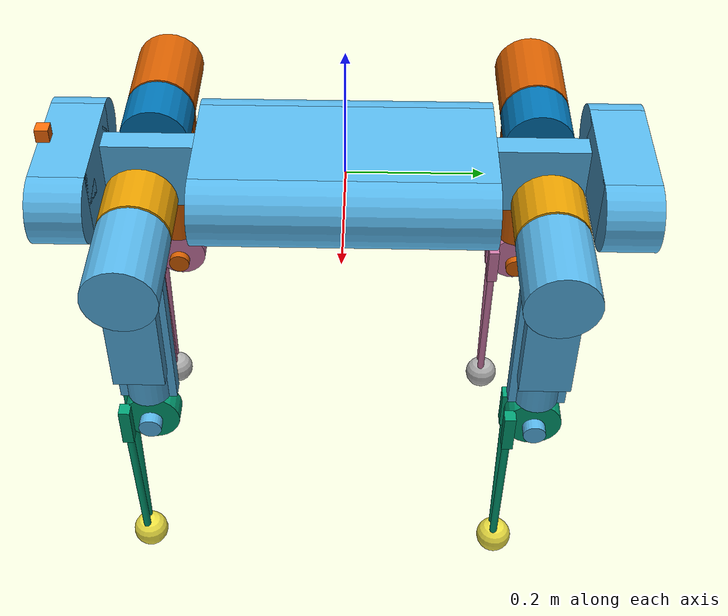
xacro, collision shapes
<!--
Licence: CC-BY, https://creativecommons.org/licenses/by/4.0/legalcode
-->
<?xml version="1.0"?>
<robot name="dogbot" xmlns:xacro="http://ros.org/wiki/xacro">

  <xacro:property name="collisionmesh" value="false" />

  <xacro:property name="bodyheight" value="0.105" />
  <xacro:property name="bodywidth" value="0.282" />
  <xacro:property name="bodylen" value="0.865" />

  <xacro:property name="hipoffsetside" value="0.088" /><!-- offset from body centreline to hip roll -->
  <xacro:property name="hipoffset" value="0.2875" /><!-- offset from body midpoint front/back to hip, axis-to-axis is 575mm -->
  <xacro:property name="legoffsetside" value="0.18675" /><!-- from centreline to centre/origin of upper leg -->
  <xacro:property name="upperleglen" value="0.315" />
  <xacro:property name="lowerleglen" value="0.3" />

  <xacro:property name="kp" value="1000000" />
  <xacro:property name="kd" value="1.0" />
  <!-- degrees to radians -->
  <xacro:property name="d2rad" value="0.017453" />

  <xacro:property name="box_height" value="0.02" />
  <xacro:property name="box_width" value="0.02" />

  <material name="blue">
    <color rgba="0 0 0.8 1"/>
  </material>

  <material name="black">
    <color rgba="0 0 0 1"/>
  </material>

  <material name="white">
    <color rgba="1 1 1 1"/>
  </material>

  <material name="dogbotred">
    <color rgba="1 0 0 1"/>
  </material>

  <material name="dogbotgray">
    <color rgba="0.7 0.7 0.7 1"/>
  </material>

  <!-- Approximate mass distribution with a box
  set ifactor=1 for solid box, =2.0 for a thin shell -->
  <xacro:macro name="default_inertial" params="mass xSize ySize zSize x:=0 y:=0 z:=0 ifactor:=1.0">
    <inertial>
      <mass value="${mass}" />
      <origin xyz="${x} ${y} ${z}" rpy="0 0 0" />
      <inertia
        ixx="${(1.0 / 12.0) * mass * ifactor * (pow(ySize, 2) + pow(zSize, 2))}"
        ixy="0.0"
        ixz="0.0"
        iyy="${(1.0 / 12.0) * mass * ifactor * (pow(xSize, 2) + pow(zSize, 2))}"
        iyz="0.0"
        izz="${(1.0 / 12.0) * mass * ifactor * (pow(xSize, 2) + pow(ySize, 2))}"
      />
    </inertial>
  </xacro:macro>

  <!-- useful for visual-only links; need some inertia on all elements -->
  <xacro:macro name="tinymass" >
    <xacro:default_inertial mass="0.001" xSize="0.001" ySize="0.001" zSize="0.001" />
  </xacro:macro>

  <xacro:macro name="custom_inertial" params="mass x:=0 y:=0 z:=0 r:=0 p:=0 yaw:=0 ixx:=0.01 ixy:=0 ixz:=0 iyy:=0.01 iyz:=0 izz:=0.01">
    <inertial>
      <mass value="${mass}" />
      <origin xyz="${x} ${y} ${z}" rpy="${r} ${p} ${yaw}" />
      <inertia
        ixx="${ixx}" ixy="${ixy}" ixz="${ixz}"
        iyy="${iyy}" iyz="${iyz}" izz="${izz}"
      />
    </inertial>
  </xacro:macro>

  <xacro:macro name="offset_collisionbox" params="l w:=${bodywidth-bodyheight} h:=${bodyheight} x:=0 y:=0 z:=0">
    <collision>
      <origin xyz="${x} ${y} ${z}" rpy="0 0 0" />
      <geometry>
        <box size="${w} ${l} ${h}"/>
      </geometry>
    </collision>
  </xacro:macro>

  <xacro:macro name="offset_cylinder" params="l rad=${bodyheight/2} x:=0 y:=0 z:=0 r:=0 p:=0 yaw:=0" >
    <collision>
      <origin xyz="${x} ${y} ${z}" rpy="${r} ${p} ${yaw}" />
      <geometry>
        <cylinder radius="${rad}" length="${l}"/>
      </geometry>
    </collision>
  </xacro:macro>

  <xacro:macro name="offset_cylinderpair" params="l rad=${bodyheight/2} x:=${(bodywidth/2)-(bodyheight/2)} y:=0">
    <xacro:offset_cylinder l="${l}" rad="${rad}" x="${x}" y="${y}" r="${pi/2}" />
    <xacro:offset_cylinder l="${l}" rad="${rad}" x="${-x}" y="${y}" r="${pi/2}" />
  </xacro:macro>

  <!-- start the robot links -->
  <link name="base_link">
  </link>

  <link name="body">
    <visual>
      <origin xyz="0 0 0" rpy="${-0.5 * pi} 0 0" />
      <geometry>
        <mesh scale="1.0 1.0 1.0" filename="package://dogbot_description/meshes/body.dae"/>
      </geometry>
    </visual>

    <xacro:if value="${collisionmesh}">
    <collision>
      <geometry>
        <mesh scale="1.0 1.0 1.0" filename="package://dogbot_description/meshes/body.dae"/>
      </geometry>
    </collision>
    </xacro:if>
    <xacro:unless value="${collisionmesh}">
      <!-- central body -->
      <xacro:offset_collisionbox l="0.433" />
      <xacro:offset_cylinderpair l="0.433" />
      <!-- handles -->
      <xacro:offset_collisionbox l="0.132" w="0.035" y="0.2825"/>
      <xacro:offset_collisionbox l="0.132" w="0.035" y="-0.2825"/>
      <!-- ends -->
      <xacro:offset_collisionbox l="0.080" y="0.3975"/>
      <xacro:offset_cylinderpair l="0.080" y="0.3975" />
      <xacro:offset_collisionbox l="0.080" y="-0.3975"/>
      <xacro:offset_cylinderpair l="0.080" y="-0.3975" />
    </xacro:unless>

    <xacro:custom_inertial mass="9.3" ixx="0.41" iyy="0.091" izz="0.482"/>

  </link>

  <joint name="base_joint" type="fixed">
    <axis xyz="0 0 0" rpy="0 0 0" />
    <parent link="base_link"/>
    <child link="body"/>
  </joint>

   <!-- giunto che unisce body a sensor -->

  <joint name="body_sensor" type="fixed">
  <axis xyz="0 0 0" rpy="0 0 0" />
    <parent link="body"/>
    <child link="sensor"/>
    <origin rpy="0.0 0.0 -1.57" xyz="0.0 -0.43 0.053" />
  </joint>

   <link name="sensor">
    <collision>
      <origin xyz="0 0 ${box_height/2}" rpy="0 0 0"/>
      <geometry>
        <box size="${box_width} ${box_width} ${box_height}"/>
      </geometry>
    </collision>
    <visual>
      <origin xyz="0 0 ${box_height/2}" rpy="0 0 0"/>
      <geometry>
        <box size="${box_width} ${box_width} ${box_height}"/>
      </geometry>
      <material name="orange"/>
    </visual>
    <inertial>
      <origin xyz="0 0 1" rpy="0 0 0"/>
      <mass value="0.114"/>
      <inertia
        ixx="0.001" ixy="0.0" ixz="0.0"
        iyy="0.001" iyz="0.0"
        izz="0.001"/>
    </inertial>
  </link>
  <material name="orange">
    <color rgba="${255/255} ${108/255} ${10/255} 1.0"/>
  </material>
 <gazebo reference="sensor">
    <material>Gazebo/Blue</material>
  </gazebo>

  <!-- altro giunto -->

  <link name="bodytext">
    <visual>
      <origin xyz="0 0 0" rpy="${-0.5 * pi} 0 0" />
      <geometry>
        <mesh scale="1.0 1.0 1.0" filename="package://dogbot_description/meshes/bodyTEXT.dae"/>
      </geometry>
    </visual>
    <xacro:tinymass />
  </link>

  <joint name="bodytext_joint" type="fixed">
    <parent link="body"/>
    <child link="bodytext"/>
  </joint>

  <gazebo reference="body">
    <mu1 value="200.0"/>
    <mu2 value="100.0"/>
    <kp value="${kp}" />
    <kd value="${kd}" />

 <sensor name="base_link_contactsensor_sensor" type="contact">
        <always_on>true</always_on>
        <contact>
          <collision>base_link_fixed_joint_lump__body_collision_8</collision>
        </contact>
        <plugin name="body_plugin" filename="libgazebo_ros_bumper.so">
          <bumperTopicName>base_link_contactsensor_state</bumperTopicName>
          <frameName>world</frameName>
        </plugin>
      </sensor>

 <sensor name="base_link_contactsensor_sensor2" type="contact">
        <always_on>true</always_on>
        <contact>
          <collision>base_link_fixed_joint_lump__body_collision_9</collision>
        </contact>
        <plugin name="body_plugin2" filename="libgazebo_ros_bumper.so">
          <bumperTopicName>base_link_contactsensor_state2</bumperTopicName>
          <frameName>world</frameName>
        </plugin>
      </sensor>

 <sensor name="base_link_contactsensor_sensor3" type="contact">
        <always_on>true</always_on>
        <contact>
          <collision>base_link_fixed_joint_lump__body_collision_10</collision>
        </contact>
        <plugin name="body_plugin3" filename="libgazebo_ros_bumper.so">
          <bumperTopicName>base_link_contactsensor_state3</bumperTopicName>
          <frameName>world</frameName>
        </plugin>
      </sensor>
  </gazebo>

  <xacro:macro name="leg" params="prefix suffix reflectx reflecty">

    <link name="${prefix}_${suffix}_hip">
      <visual>
        <origin xyz="0 0 0" rpy="${-0.5 * pi} ${(reflectx-1) * 0.5 * pi} 0" />
        <geometry>
          <mesh scale="1.0 1.0 1.0" filename="package://dogbot_description/meshes/hip.dae"/>
        </geometry>
      </visual>

      <xacro:if value="${collisionmesh}">
      <collision>
        <origin xyz="0 0 0" rpy="${-0.5 * pi} ${(reflectx-1) * 0.5 * pi} 0" />
        <geometry>
          <mesh scale="1.0 1.0 1.0" filename="package://dogbot_description/meshes/hip.dae"/>
        </geometry>
      </collision>
      </xacro:if>
      <xacro:unless value="${collisionmesh}">
        <xacro:offset_cylinder l="0.08" p="${pi/2}" x="${0.02 * reflectx}"/>
      </xacro:unless>
      <xacro:custom_inertial mass="0.836" x="${0.0074 * reflectx}" ixx="0.00213" iyy="0.00147" izz="0.00172"/>

    </link>

    <!-- roll joint connects the hip to the body -->
    <joint name="${prefix}_${suffix}_roll_joint" type="revolute">
      <axis xyz="0 ${reflecty} 0" rpy="0 0 0" />
      <parent link="body"/>
      <child link="${prefix}_${suffix}_hip"/>
      <origin xyz="${hipoffsetside*reflectx} ${hipoffset * reflecty} 0" rpy="0 0 0"/>
      <limit
         lower ="${-100 * d2rad}"
         upper ="${100 * d2rad}"
         effort="60" velocity="6.0" />
    </joint>

    <link name="${prefix}_${suffix}_upperleg">
      <visual>
        <origin xyz="0 0 0" rpy="${-0.5 * pi} 0 ${ (reflectx -1) * 0.5 * pi}" />
        <geometry>
          <mesh scale="1.0 1.0 1.0" filename="package://dogbot_description/meshes/LegUpper_withCover.dae"/>
        </geometry>
      </visual>

      <xacro:if value="${collisionmesh}">
      <collision>
        <origin xyz="0 0 0" rpy="${-0.5 * pi} 0 ${ (reflectx -1) * 0.5 * pi}" />
        <geometry>
          <mesh scale="1.0 1.0 1.0" filename="package://dogbot_description/meshes/LegUpper_withCover.dae"/>
        </geometry>
      </collision>
      </xacro:if>
      <xacro:unless value="${collisionmesh}">
        <!-- upper motor housings -->
        <xacro:offset_cylinder l="0.13" p="${pi/2}" x="${0.03 * reflectx}"/>
        <!-- main leg cylinder and belt -->
        <xacro:offset_cylinder l="0.27" rad="0.033" z="-0.135"/>
        <xacro:offset_collisionbox l="0.084" w="0.025" h="0.27" z="-0.135"/>
        <!-- circuit board housing -->
        <xacro:offset_collisionbox l="0.074" w="0.026" h="0.138" x="${0.046 * reflectx}" z="-0.126"/>
        <!-- knee-joint components -->
        <xacro:offset_cylinder l="0.018" rad="0.017" z="${-upperleglen}" p="${pi/2}" x="${0.03 * reflectx}" />
        <xacro:offset_cylinder l="0.013" rad="0.017" z="${-upperleglen}" p="${pi/2}" x="${-0.036 * reflectx}" />
      </xacro:unless>

      <xacro:custom_inertial mass="1.851" x="${0.0418 * reflectx}" z="-0.0517" ixx="0.0238" iyy="0.0252" izz="0.0044"/>
    </link>

    <!-- pitch joint connects hip to upper leg -->
    <joint name="${prefix}_${suffix}_pitch_joint" type="revolute">
      <axis xyz="${reflectx} 0 0" rpy="0 0 0" />
      <parent link="${prefix}_${suffix}_hip"/>
      <child link="${prefix}_${suffix}_upperleg"/>
      <origin xyz="${(legoffsetside - hipoffsetside)*reflectx} 0 0" rpy="0 0 0"/>
      <limit
        lower ="${-0.5 * pi *(reflectx+1) + 0.25 * pi * (reflectx-1)}"
        upper="${0.25 * pi *(reflectx+1) - 0.5 * pi * (reflectx-1)}"
        effort="60"
        velocity="6.0"
      />
    </joint>

    <link name="${prefix}_${suffix}_lowerleg">
      <visual>
        <origin xyz="0 0 0" rpy="${-0.5 * pi} 0 0" />
        <geometry>
          <mesh scale="1.0 1.0 1.0" filename="package://dogbot_description/meshes/LegLower_nofoot.dae"/>
        </geometry>
      </visual>

      <xacro:if value="${collisionmesh}">
      <collision>
        <origin xyz="0 0 0" rpy="${-0.5 * pi} 0 0" />
        <geometry>
          <mesh scale="1.0 1.0 1.0" filename="package://dogbot_description/meshes/LegLower_nofoot.dae"/>
        </geometry>
      </collision>
      </xacro:if>
      <xacro:unless value="${collisionmesh}">
        <!-- knee assembly -->
        <xacro:offset_cylinder l="0.033" rad="0.042" p="${pi/2}" />
        <xacro:offset_collisionbox l="0.017" w="0.02" h="0.065" x="0.024" y="-0.0375" z="-0.0055" />
        <xacro:offset_collisionbox l="0.017" w="0.02" h="0.065" x="-0.024" y="-0.0375" z="-0.0055" />
        <!-- carbon fibre struts -->
        <xacro:offset_cylinder l="0.290" rad="0.006" p="0.04996" x="0.01575" y="-0.0375" z="-0.145" />
        <xacro:offset_cylinder l="0.290" rad="0.006" p="-0.04996" x="-0.01575" y="-0.0375" z="-0.145" />
      </xacro:unless>

      <xacro:custom_inertial mass="0.302" y="-0.029" z="-0.1439" ixx="0.00527" iyy="0.00509" izz="0.0008"/>
    </link>

    <gazebo reference="${prefix}_${suffix}_lowerleg">
      <mu1 value="2000.0"/>
      <mu2 value="1000.0"/>
      <kp value="${kp}" />
      <kd value="${kd}" />
      <selfCollide value="true" />
    </gazebo>

    <joint name="${prefix}_${suffix}_knee_joint" type="revolute">
      <axis xyz="${-1 * reflectx} 0 0" rpy="${-2*pi} 0 0" />
      <parent link="${prefix}_${suffix}_upperleg"/>
      <child link="${prefix}_${suffix}_lowerleg"/>
      <origin xyz="0 0 ${-upperleglen}" rpy="0 0 0"/>
      <limit
         lower ="${-0.01*(reflectx+1) + 150 * d2rad * (reflectx-1)/2}"
         upper ="${-0.01*(reflectx-1) + 150 * d2rad * (reflectx+1)/2}"
         effort="60" velocity="6.0"
       />
    </joint>

    <link name="${prefix}_${suffix}_foot">
      <visual>
        <origin xyz="0 0 0" rpy="${-0.5 * pi} 0 0" />
        <geometry>
          <mesh scale="1.0 1.0 1.0" filename="package://dogbot_description/meshes/foot.dae"/>
        </geometry>
      </visual>

      <xacro:if value="${collisionmesh}">
      <collision>
        <origin xyz="0 0 0" rpy="${-0.5 * pi} 0 0" />
        <geometry>
          <mesh scale="1.0 1.0 1.0" filename="package://dogbot_description/meshes/foot.dae"/>
        </geometry>
      </collision>
      </xacro:if>
      <xacro:unless value="${collisionmesh}">
        <collision>
          <origin xyz="0 -0.035 ${-lowerleglen}" rpy="0 0 0" />
          <geometry>
            <sphere radius="0.028" />
          </geometry>
        </collision>
      </xacro:unless>
      <!-- foot mass is included in lower leg link -->
      <xacro:tinymass />
    </link>

    <joint name="${prefix}_${suffix}_foot_joint" type="fixed">
      <axis xyz="0 1 0" rpy="0 0 0" />
      <parent link="${prefix}_${suffix}_lowerleg"/>
      <child link="${prefix}_${suffix}_foot"/>
      <origin xyz="0 0 0" rpy="0 0 0"/>
    </joint>

    <gazebo reference="${prefix}_${suffix}_foot">
      <mu1 value="2000.0"/>
      <mu2 value="1000.0"/>
      <kp value="${kp}" />
      <kd value="${kd}" />

 <!-- Contact Sensor -->
      <sensor name="${prefix}_${suffix}_contactsensor_sensor" type="contact">
        <always_on>true</always_on>
        <contact>
          <collision>${prefix}_${suffix}_lowerleg_fixed_joint_lump__${prefix}_${suffix}_foot_collision_5</collision>
        </contact>
        <plugin name="${prefix}_${suffix}_foot_plugin" filename="libgazebo_ros_bumper.so">
          <bumperTopicName>${prefix}_${suffix}_contactsensor_state</bumperTopicName>
          <frameName>world</frameName>
        </plugin>
      </sensor>

 <!-- Contact Sensor -->
      <sensor name="${prefix}_${suffix}_contactsensor2_sensor" type="contact">
        <always_on>true</always_on>
        <contact>
          <collision>${prefix}_${suffix}_lowerleg_fixed_joint_lump__${prefix}_${suffix}_foot_collision_5</collision>
        </contact>

        <plugin name="${prefix}_${suffix}_foot_plugin2" filename="libgazebo_ros_bumper.so">
          <bumperTopicName>${prefix}_${suffix}_contactsensor_state</bumperTopicName>
          <frameName>world</frameName>
        </plugin>
      </sensor>

 </gazebo>

    <transmission name="${prefix}_${suffix}_roll_transmition" >
      <type>transmission_interface/SimpleTransmission</type>
      <joint name="${prefix}_${suffix}_roll_joint">
        <hardwareInterface>hardware_interface/EffortJointInterface</hardwareInterface>
      </joint>
      <actuator name="${prefix}_${suffix}_roll_motor" >
        <hardwareInterface>hardware_interface/EffortJointInterface</hardwareInterface>
        <mechanicalReduction>1</mechanicalReduction>
      </actuator>
    </transmission>

    <transmission name="${prefix}_${suffix}_pitch_transmition" >
      <type>transmission_interface/SimpleTransmission</type>
      <joint name="${prefix}_${suffix}_pitch_joint">
        <hardwareInterface>hardware_interface/EffortJointInterface</hardwareInterface>
      </joint>
      <actuator name="${prefix}_${suffix}_pitch_motor" >
        <hardwareInterface>hardware_interface/EffortJointInterface</hardwareInterface>
        <mechanicalReduction>1</mechanicalReduction>
      </actuator>
    </transmission>

    <transmission name="${prefix}_${suffix}_knee_transmition" >
      <type>transmission_interface/SimpleTransmission</type>
      <joint name="${prefix}_${suffix}_knee_joint">
        <hardwareInterface>hardware_interface/EffortJointInterface</hardwareInterface>
      </joint>
      <actuator name="${prefix}_${suffix}_knee_motor" >
        <hardwareInterface>hardware_interface/EffortJointInterface</hardwareInterface>
        <mechanicalReduction>1</mechanicalReduction>
      </actuator>
    </transmission>

  </xacro:macro>

  <xacro:leg prefix="back" suffix="left" reflectx="-1"  reflecty="-1"/>
  <xacro:leg prefix="back" suffix="right"  reflectx="1" reflecty="-1" />
  <xacro:leg prefix="front"  suffix="left" reflectx="-1"  reflecty="1"/>
  <xacro:leg prefix="front"  suffix="right"  reflectx="1" reflecty="1" />

  <!-- Gazebo plugin for ROS Control -->
  <gazebo>
    <plugin name="gazebo_ros_control" filename="libgazebo_ros_control.so">

    </plugin>
  </gazebo>

    <gazebo reference="sensor">
    <sensor type="camera" name="camera1">

      <update_rate>5.0</update_rate>
      <camera name="head">
        <horizontal_fov>1.3962634</horizontal_fov>
        <image>
          <width>800</width>
          <height>600</height>
          <format>R8G8B8</format>
        </image>
        <clip>
          <near>0.02</near>
          <far>300</far>
        </clip>
        <noise>
          <type>gaussian</type>
          <mean>0.0</mean>
          <stddev>0.007</stddev>
        </noise>
      </camera>
      <plugin name="camera_controller" filename="libgazebo_ros_camera.so">
        <alwaysOn>true</alwaysOn>
        <updateRate>0.0</updateRate>
        <cameraName>/camera</cameraName>
        <robotNamespace>dogbot</robotNamespace>
        <imageTopicName>image_raw</imageTopicName>
        <cameraInfoTopicName>camera_info</cameraInfoTopicName>
        <frameName>world</frameName>
        <hackBaseline>0.07</hackBaseline>
        <distortionK1>0.0</distortionK1>
        <distortionK2>0.0</distortionK2>
        <distortionK3>0.0</distortionK3>
        <distortionT1>0.0</distortionT1>
        <distortionT2>0.0</distortionT2>
      </plugin>
    </sensor>
  </gazebo>

   <gazebo reference="sensor">
    <sensor type="ray" name="lds_lfcd_sensor">
      <pose>0 0 0 0 0 0</pose>
      <visualize>true</visualize>
      <update_rate>5</update_rate>
      <ray>
        <scan>
          <horizontal>
            <samples>60</samples>
            <resolution>1</resolution>
            <min_angle>-1.047</min_angle>
            <max_angle>1.047</max_angle>
          </horizontal>
        </scan>
        <range>
          <min>0.120</min>
          <max>2.5</max>
          <resolution>0.015</resolution>
        </range>
        <noise>
          <type>gaussian</type>
          <mean>0.0</mean>
          <stddev>0.01</stddev>
        </noise>
      </ray>
      <plugin name="gazebo_ros_lds_lfcd_controller" filename="libgazebo_ros_laser.so">
        <topicName>scan</topicName>
        <frameName>world</frameName>
      </plugin>
    </sensor>
  </gazebo>

</robot>
